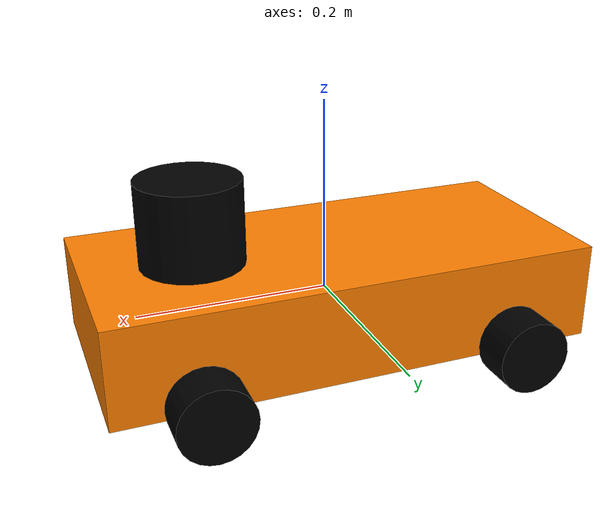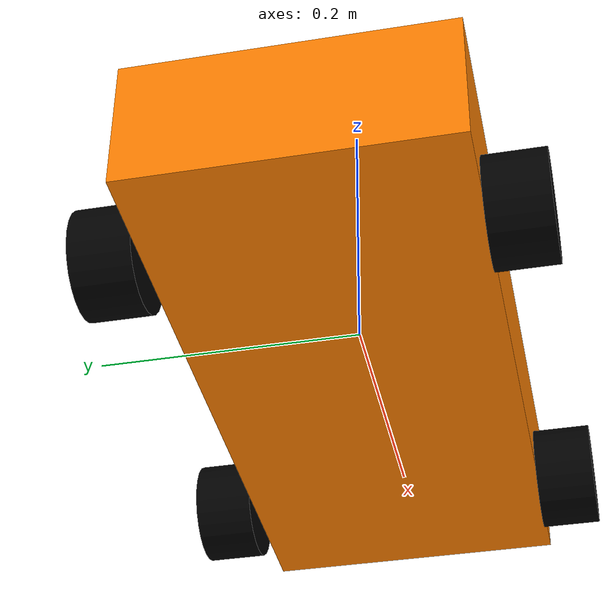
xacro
<?xml version="1.0"?>
<robot name="f1tenth_car" xmlns:xacro="http://www.ros.org/wiki/xacro">

    <xacro:arg name="wheelbase" default="0.324"/>

    <xacro:arg name="chassis_length" default="0.5" />
    <xacro:arg name="chassis_width" default="0.18964" />
    <xacro:arg name="chassis_height" default="0.10" />
    <xacro:arg name="chassis_mass" default="3.44" />
    <xacro:arg name="chassis_mu" default="0.1" />

    <xacro:arg name="wheel_mass" default="0.075" />
    <xacro:arg name="wheel_radius" default="0.0381" />
    <xacro:arg name="wheel_length" default="0.04318" />
    <xacro:arg name="tire_thickness" default="0.012" />
    <xacro:arg name="wheel_mu" default="100.0" />

    <xacro:arg name="arm_length" default="0.019" />
    <xacro:arg name="arm_radius" default="0.005" />
    <xacro:arg name="arm_mass" default="0.005" />

    <xacro:arg name="knuckle_radius" default="0.0025" />

    <xacro:arg name="max_wheel_angle" default="0.6" />
    <xacro:arg name="max_steering_angular_velocity" default="2.0" />
    <xacro:arg name="max_wheel_angular_velocity" default="20.0"/>

    <xacro:property name="wheelbase" value="$(arg wheelbase)"/>

    <xacro:property name="chassis_length" value="$(arg chassis_length)" />
    <xacro:property name="chassis_width" value="$(arg chassis_width)" />
    <xacro:property name="chassis_height" value="$(arg chassis_height)" />
    <xacro:property name="chassis_mass" value="$(arg chassis_mass)" />
    <xacro:property name="chassis_mu" value="$(arg chassis_mu)"/>

    <xacro:property name="wheel_radius" value="$(arg wheel_radius)" />
    <xacro:property name="wheel_mass" value="$(arg wheel_mass)" />
    <xacro:property name="wheel_length" value="$(arg wheel_length)" />
    <xacro:property name="tire_thickness" value="$(arg tire_thickness)" />
    <xacro:property name="wheel_mu" value="$(arg wheel_mu)" />

    <xacro:property name="arm_length" value="$(arg arm_length)" />
    <xacro:property name="arm_radius" value="$(arg arm_radius)" />
    <xacro:property name="arm_mass" value="$(arg arm_mass)" />

    <xacro:property name="knuckle_radius" value="$(arg knuckle_radius)" />

    <xacro:property name="max_wheel_angle" value="$(arg max_wheel_angle)"/>
    <xacro:property name="max_steering_angular_velocity" value="$(arg max_steering_angular_velocity)" />
    <xacro:property name="max_wheel_angular_velocity" value="$(arg max_wheel_angular_velocity)"/>

    <xacro:property name="knuckle_mass" value="${arm_mass * (arm_length - 2 * knuckle_radius) / arm_length}" />
    <xacro:property name="lidar_radius" value="0.053"/>
    <xacro:property name="lidar_length" value="0.087"/>
    <xacro:property name="lidar_mass" value="0.37" />
    <xacro:property name="lidar_angle" value="${radians(135)}"/>

    <material name="papaya orange">
        <color rgba="1.0 ${128 / 255} 0.0 1.0" />
    </material>

    <material name="black">
        <color rgba="0.0 0.0 0.0 1.0" />
    </material>

    <material name="red-orange">
        <color rgba="${189 / 255} ${55 / 255} ${10 / 255} 1.0" />
    </material>

    <material name="grey">
        <color rgba="${166 / 255} ${166 / 255} ${166 / 255} 1.0" />
    </material>

    <xacro:macro name="box_inertial" params="mass length width height">
        <inertial>
                <mass value="${mass}" />
                <inertia ixx="${1 / 12 * mass * (width * width + height * height)}" ixy="0.0" ixz="0.0"
                        iyy="${1 / 12 * mass * (length * length + height * height)}" iyz="0.0"
                        izz="${1 / 12 * mass * (length * length + width * width)}" />
        </inertial>
    </xacro:macro>

    <xacro:macro name="cylinder_geometry" params="length radius">
        <geometry>
            <cylinder length="${length}" radius="${radius}"/>
        </geometry>
    </xacro:macro>

    <!-- dummy link cuz KDL doesn't support a root link with inertia???? idfk -->
    <link name="base_link"/>

    <joint name="dummy_to_chassis" type="fixed" >
        <parent link="base_link" />
        <child link="chassis" />
    </joint>

    <link name="chassis">
        <visual>
            <geometry>
                <box size="${chassis_length} ${chassis_width + 2 * arm_length} ${chassis_height}"/>
            </geometry>
            <material name="papaya orange" />
        </visual>
        <collision>
            <geometry>
                <box size="${chassis_length} ${chassis_width} ${chassis_height}"/>
            </geometry>
        </collision>
        <xacro:box_inertial mass="${chassis_mass}" length="${chassis_length}" width="${chassis_width}" height="${chassis_height}" />
    </link>

    <xacro:macro name="tire_inertial" params="mass outer_radius inner_radius width">
        <inertial>
            <origin xyz="0 0 0" rpy="${pi/2} 0 0" />
            <mass value="${mass}" />
            <inertia ixx="${1 / 12 * mass * (3 * (outer_radius * outer_radius + inner_radius * inner_radius) + width * width)}" ixy="0.0" ixz="0.0"
                    iyy="${1 / 12 * mass * (3 * (outer_radius * outer_radius + inner_radius * inner_radius) + width * width)}" iyz="0.0"
                    izz="${1 / 2 * mass * (outer_radius * outer_radius + inner_radius * inner_radius)}" />
        </inertial>
    </xacro:macro>

    <xacro:macro name="wheel" params="prefix mass radius length">
        <link name="${prefix}_wheel">
            <visual>
                <xacro:cylinder_geometry length="${length}" radius="${radius}" />
                <material name="black"/>
                <origin xyz="0 0 0" rpy="${pi/2} 0 0" />
            </visual>
            <collision>
                <xacro:cylinder_geometry length="${length}" radius="${radius}" />
                <origin xyz="0 0 0" rpy="${pi/2} 0 0" />
            </collision>
            <xacro:tire_inertial mass="${mass}" outer_radius="${radius}" inner_radius="${radius - tire_thickness}" width="${length}" />
        </link>
    </xacro:macro>

    <!-- Wheel definitions  -->
    <xacro:wheel prefix="front_left" mass="${wheel_mass}" radius="${wheel_radius}" length="${wheel_length}" />
    <xacro:wheel prefix="front_right" mass="${wheel_mass}" radius="${wheel_radius}" length="${wheel_length}" />
    <xacro:wheel prefix="back_left" mass="${wheel_mass}" radius="${wheel_radius}" length="${wheel_length}" />
    <xacro:wheel prefix="back_right" mass="${wheel_mass}" radius="${wheel_radius}" length="${wheel_length}" />

    <xacro:macro name="arm_inertial" params="mass radius length">
        <inertial>
            <origin xyz="0 0 0" rpy="${pi/2} 0 0" />
            <mass value="${mass}" />
            <inertia ixx="${1 / 12 * mass * (3 * radius * radius + length * length)}" ixy="0.0" ixz="0.0"
                        iyy="${1 / 12 * mass * (3 * radius * radius + length * length)}" iyz="0.0"
                        izz="${1 / 2 * mass * radius * radius}" />
        </inertial>
    </xacro:macro>

    <xacro:macro name="cylinder_inertial" params="mass radius length">
        <inertial>
            <mass value="${mass}" />
            <inertia ixx="${1 / 12 * mass * (3 * radius * radius + length * length)}" ixy="0.0" ixz="0.0"
                        iyy="${1 / 12 * mass * (3 * radius * radius + length * length)}" iyz="0.0"
                        izz="${1 / 2 * mass * radius * radius}" />
        </inertial>
    </xacro:macro>

    <xacro:macro name="arm" params="prefix mass radius length">
        <link name="${prefix}_arm">
            <visual>
                <xacro:cylinder_geometry length="${length}" radius="${radius}" />
                <material name="grey"/>
                <origin xyz="0 0 0" rpy="${pi/2} 0 0" />
            </visual>
            <collision>
                <xacro:cylinder_geometry length="${length}" radius="${radius}" />
            </collision>
            <origin xyz="0 0 0" rpy="${pi/2} 0 0" />
            <xacro:arm_inertial mass="${mass}" radius="${radius}" length="${length}" />
        </link>
    </xacro:macro>

    <!-- Wheel Arm definitions -->
    <xacro:arm prefix="front_left" mass="${arm_mass - knuckle_mass}" radius="${arm_radius}" length="${arm_length - 2 * knuckle_radius}" />
    <xacro:arm prefix="front_right" mass="${arm_mass - knuckle_mass}" radius="${arm_radius}" length="${arm_length - 2 * knuckle_radius}" />
    <xacro:arm prefix="back_left" mass="${arm_mass}" radius="${arm_radius}" length="${arm_length}" />
    <xacro:arm prefix="back_right" mass="${arm_mass}" radius="${arm_radius}" length="${arm_length}" />

    <xacro:macro name="sphere_inertial" params="mass radius">
        <inertial>
                <mass value="${mass}" />
                <inertia ixx="${2 / 5 * mass * radius * radius}" ixy="0.0" ixz="0.0"
                        iyy="${2 / 5 * mass * radius * radius}" iyz="0.0"
                        izz="${2 / 5 * mass * radius * radius}" />
        </inertial>
    </xacro:macro>

    <xacro:macro name="steering" params="prefix mass radius">
        <link name="${prefix}_steering_knuckle">
            <visual>
                <geometry>
                    <sphere radius="${radius}"/>
                </geometry>
                <material name="red-orange"/>
            </visual>
            <collision>
                <geometry>
                    <sphere radius="${radius}"/>
                </geometry>
            </collision>
            <xacro:sphere_inertial mass="${knuckle_mass}" radius="${knuckle_radius}" />
        </link>
    </xacro:macro>

    <!-- Steering knuckle definition -->
    <xacro:steering prefix="front_left" mass="${knuckle_mass}" radius="${knuckle_radius}" />
    <xacro:steering prefix="front_right" mass="${knuckle_mass}" radius="${knuckle_radius}" />

    <xacro:macro name="spinning_joint" params="prefix parent y_offset">
        <joint name="${prefix}_spinning" type="continuous">
            <parent link="${prefix}_${parent}" />
            <child link="${prefix}_wheel" />
            <axis xyz="0 1 0" />
            <origin xyz="0 ${y_offset} 0" rpy="0 0 0" />
         </joint>
    </xacro:macro>

    <!-- Wheel Spinning joint definition -->
    <xacro:spinning_joint prefix="front_right" parent="steering_knuckle" y_offset="${-(knuckle_radius + wheel_length / 2)}" />
    <xacro:spinning_joint prefix="front_left" parent="steering_knuckle" y_offset="${knuckle_radius + wheel_length / 2}" />
    <xacro:spinning_joint prefix="back_right" parent="arm" y_offset="${-(arm_length / 2 + wheel_length / 2)}" />
    <xacro:spinning_joint prefix="back_left" parent="arm" y_offset="${arm_length / 2 + wheel_length / 2}" />

    <xacro:macro name="steering_joint" params="prefix y_offset" >
        <joint name="${prefix}_steering" type="revolute">
            <parent link="${prefix}_arm" />
            <child link="${prefix}_steering_knuckle" />
            <axis xyz="0 0 1" />
            <limit lower="${-max_wheel_angle}" upper="${max_wheel_angle}" effort="10.0" velocity="${max_steering_angular_velocity}"/>
            <origin xyz="0 ${y_offset} 0" rpy="0 0 0" />
        </joint>
    </xacro:macro>

    <!-- Steering joint definitions -->
    <xacro:steering_joint prefix="front_right" y_offset="${-((arm_length - 2 * knuckle_radius) / 2 + knuckle_radius)}" />
    <xacro:steering_joint prefix="front_left" y_offset="${(arm_length - 2 * knuckle_radius) / 2 + knuckle_radius}" />

    <xacro:macro name="arm_joint" params="prefix x_offset y_offset" >
        <joint name="${prefix}_arm_fixed" type="fixed">
            <parent link="chassis"/>
            <child link="${prefix}_arm"/>
            <origin xyz="${x_offset} ${y_offset} -0.04" rpy="0 0 0" />
        </joint>
    </xacro:macro>

    <!-- Arm to chassis joints -->
    <xacro:arm_joint prefix="front_right" x_offset="${wheelbase / 2}" y_offset="${-((arm_length - 2 * knuckle_radius) / 2 + chassis_width / 2)}" />
    <xacro:arm_joint prefix="front_left" x_offset="${wheelbase / 2}" y_offset="${(arm_length - 2 * knuckle_radius) / 2 + chassis_width / 2}" />
    <xacro:arm_joint prefix="back_right" x_offset="${-wheelbase / 2}" y_offset="${-(arm_length / 2 + chassis_width / 2)}" />
    <xacro:arm_joint prefix="back_left" x_offset="${-wheelbase / 2}" y_offset="${arm_length / 2 + chassis_width / 2}" />

    <xacro:macro name="ros2_control_steering" params="prefix max_angle">
        <joint name="${prefix}_steering">
            <command_interface  name="position">
                <param name="min">${-max_angle}</param>
                <param name="max">${max_angle}</param>
            </command_interface>
            <state_interface name="velocity"/>
            <state_interface name="position"/>
        </joint>
    </xacro:macro>

   <xacro:macro name="ros2_control_spinning" params="prefix">
        <joint name="${prefix}_spinning">
            <command_interface name="velocity" />
            <state_interface name="velocity"/>
            <state_interface name="position"/>
        </joint>
    </xacro:macro>

    <ros2_control name="f1tenth_car_control" type="system">
        <hardware>
            <plugin>gz_ros2_control/GazeboSimSystem</plugin>
        </hardware>

        <xacro:ros2_control_steering prefix="front_left" max_angle="${max_wheel_angle}"/>
        <xacro:ros2_control_steering prefix="front_right" max_angle="${max_wheel_angle}"/>
        <xacro:ros2_control_spinning prefix="front_left"/>
        <xacro:ros2_control_spinning prefix="front_right"/>
        <xacro:ros2_control_spinning prefix="back_left"/>
        <xacro:ros2_control_spinning prefix="back_right"/>

    </ros2_control>

    <gazebo>
        <plugin filename="libgz_ros2_control-system.so" name="gz_ros2_control::GazeboSimROS2ControlPlugin">
            <parameters>$(find f1tenth_gz_sim)/config/vehicle_controllers.yaml</parameters>
        </plugin>

        <plugin
            filename="gz-sim-sensors-system"
            name="gz::sim::systems::Sensors">
            <render_engine>ogre2</render_engine>
        </plugin>

    </gazebo>

    <xacro:macro name="gz_friction" params="link mu">
        <gazebo reference="${link}">
            <mu1>${mu}</mu1>
            <mu2>${mu}</mu2>
        </gazebo>
    </xacro:macro>

    <xacro:gz_friction link="front_left_wheel" mu="${wheel_mu}" />
    <xacro:gz_friction link="front_right_wheel" mu="${wheel_mu}" />
    <xacro:gz_friction link="back_left_wheel" mu="${wheel_mu}" />
    <xacro:gz_friction link="back_right_wheel" mu="${wheel_mu}" />

    <xacro:gz_friction link="chassis" mu="${chassis_mu}" />

        <!-- hokuyo lidar (UTM - 30LX) -->
    <link name="laser_frame">
        <collision>
            <geometry>
                <cylinder length="${lidar_length}" radius="${lidar_radius}"/>
            </geometry>
        </collision>
        <visual>
            <geometry>
                <cylinder length="${lidar_length}" radius="${lidar_radius}"/>
            </geometry>
            <material name="black" />
        </visual>
        <xacro:cylinder_inertial mass="${lidar_mass}" radius="${lidar_radius}" length="${lidar_length}"/>
    </link>

    <joint name="laser_joint" type="fixed" >
        <parent link="chassis" />
        <child link="laser_frame" />
        <origin xyz="0.14 0 ${chassis_height/2 + lidar_length / 2}" rpy="0 0 0" />
    </joint>

    <gazebo reference="laser_frame">
        <sensor name="hokuyo_lidar" type="gpu_lidar">
            <topic>/scan</topic>
            <pose relative_to="laser_frame"> 0 0 0 0 0 0</pose>
            <visualize>true</visualize>
            <always_on>true</always_on>
            <update_rate>20</update_rate>
            <lidar>
                <scan>
                    <horizontal>
                        <samples>1440</samples>
                        <min_angle>${-(lidar_angle)}</min_angle>
                        <max_angle>${lidar_angle}</max_angle>
                    </horizontal>
                </scan>
                <range>
                    <min>0.1</min>
                    <max>30</max>
                    <resolution>0.01</resolution>
                </range>
            </lidar>
        </sensor>
    </gazebo>
</robot>
